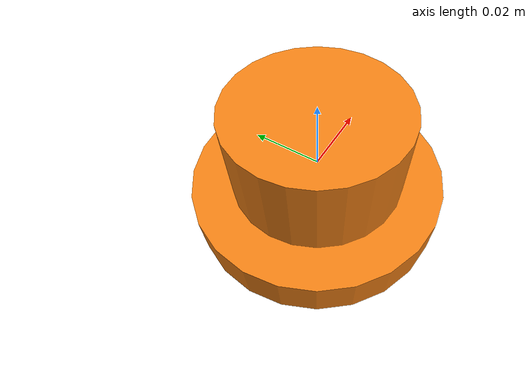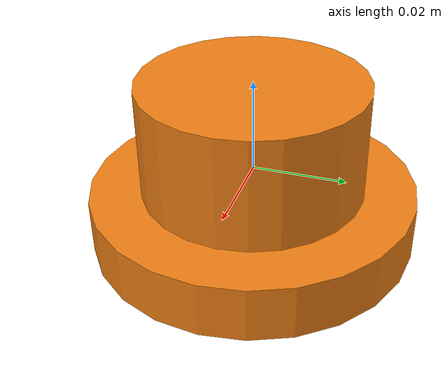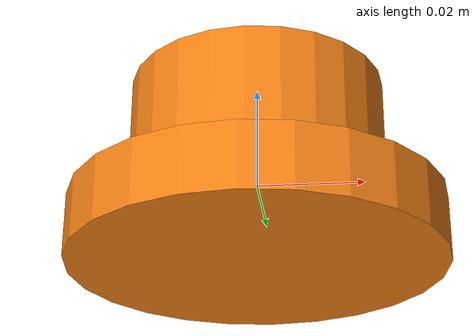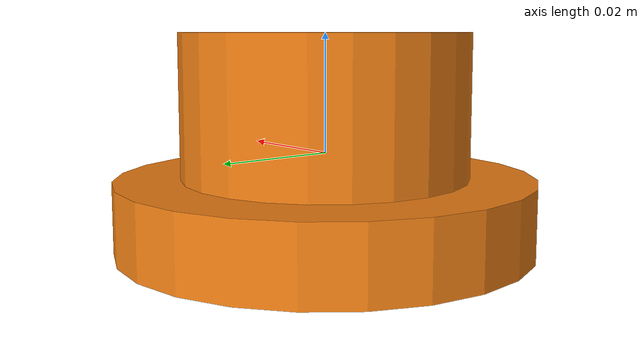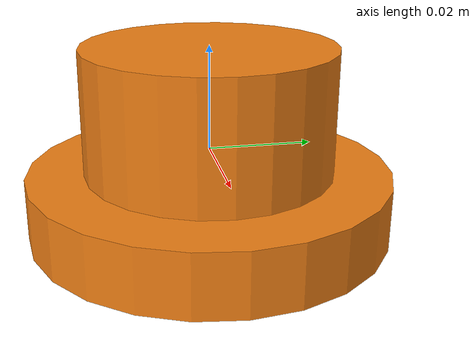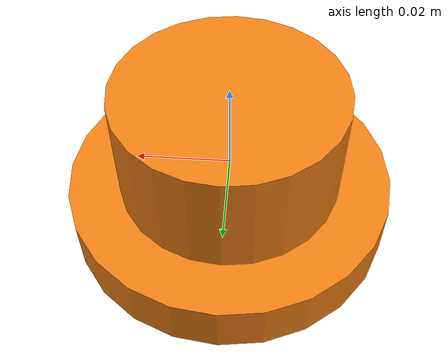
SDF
<?xml version="1.0"?>
<sdf version="1.8">
  <model name="sensoragent_part_flange">
    <link name="part">
      <inertial>
        <mass>0.22</mass>
        <inertia>
          <ixx>0.0000750</ixx>
          <iyy>0.0000750</iyy>
          <izz>0.0001348</izz>
        </inertia>
      </inertial>
      <collision name="collision">
        <geometry><cylinder><radius>0.035</radius><length>0.032</length></cylinder></geometry>
        <surface><friction><ode><mu>1.2</mu><mu2>1.2</mu2></ode></friction></surface>
      </collision>
      <visual name="body">
        <pose>0 0 0.004 0 0 0</pose>
        <geometry><cylinder><radius>0.024</radius><length>0.032</length></cylinder></geometry>
        <material><diffuse>0.94 0.50 0.08 1</diffuse></material>
      </visual>
      <visual name="flange">
        <pose>0 0 -0.010 0 0 0</pose>
        <geometry><cylinder><radius>0.035</radius><length>0.012</length></cylinder></geometry>
        <material><diffuse>0.94 0.50 0.08 1</diffuse></material>
      </visual>
    </link>
  </model>
</sdf>
